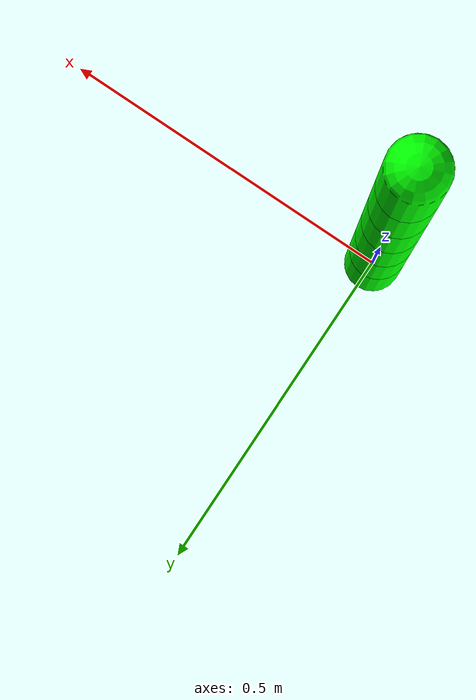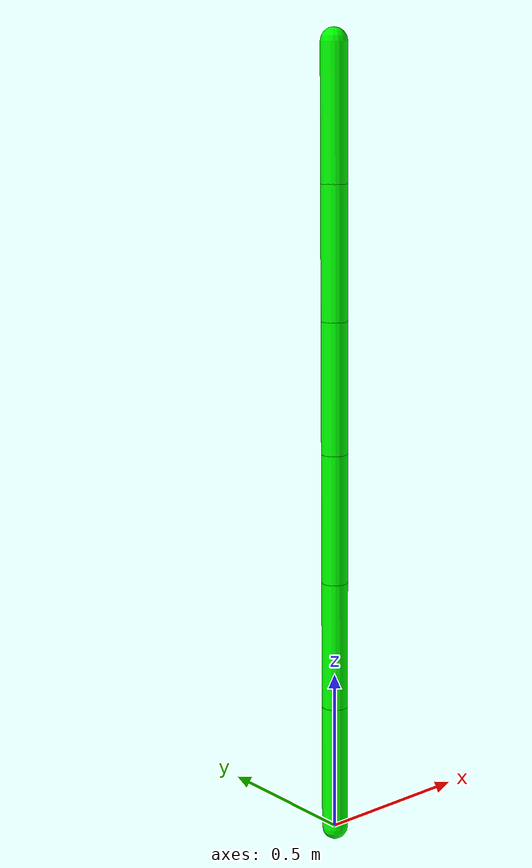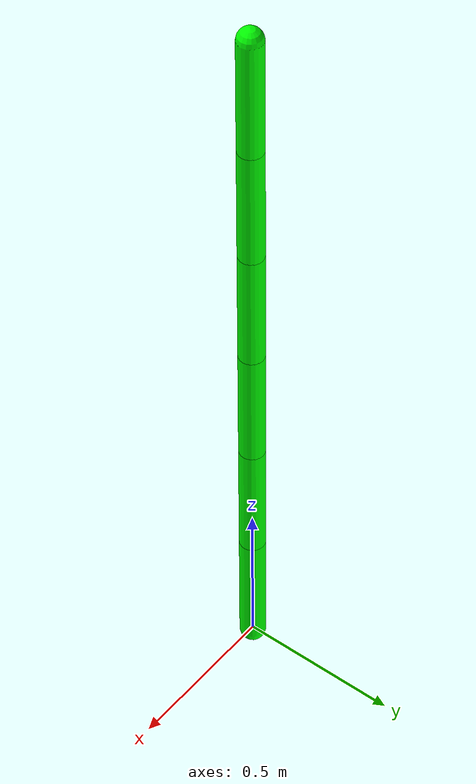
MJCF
<mujoco>
    <compiler angle="radian" meshdir="assets" autolimits="true"/>
    <option integrator="implicitfast" iterations="100"/>
    <default>
        <default class="simple">
            <joint damping="1"/>
            <general gaintype="fixed" biastype="affine"/>
        </default>
    </default>
    <worldbody>
        <body childclass="simple" name="base" pos="0 0 0">
            <body name="link1" pos="0 0 0">
                <joint name="joint1" type="hinge" axis="0 0 1" range="-3.14159 3.14159"/>
                <geom type="capsule" size="0.04 0.2" pos="0 0 0.2" rgba="0 1 0 1" contype="0" conaffinity="0" density="1"/>
                <body name="link2" pos="0 0 0.4">
                    <site name="site1" pos="0 0 0"/>
                    <joint name="joint2" type="hinge" axis="1 0 0" range="-3.14159 3.14159"/>
                    <geom type="capsule" size="0.04 0.2" pos="0 0 0.2" rgba="0 1 0 1" contype="0" conaffinity="0" density="1"/>
                    <body name="link3" pos="0 0 0.4">
                        <site name="site2" pos="0 0 0"/>
                        <joint name="joint3" type="hinge" axis="0 0 1" range="-3.14159 3.14159"/>
                        <geom type="capsule" size="0.04 0.2" pos="0 0 0.2" rgba="0 1 0 1" contype="0" conaffinity="0" density="1"/>
                        <body name="link4" pos="0 0 0.4">
                            <site name="site3" pos="0 0 0"/>
                            <joint name="joint4" type="hinge" axis="1 0 0" range="-3.14159 3.14159"/>
                            <geom type="capsule" size="0.04 0.2" pos="0 0 0.2" rgba="0 1 0 1" contype="0" conaffinity="0" density="1"/>
                            <body name="link5" pos="0 0 0.4">
                                <site name="site4" pos="0 0 0"/>
                                <joint name="joint5" type="hinge" axis="1 0 0" range="-3.14159 3.14159"/>
                                <geom type="capsule" size="0.04 0.2" pos="0 0 0.2" rgba="0 1 0 1" contype="0" conaffinity="0" density="1"/>
                                <body name="link6" pos="0 0 0.4">
									<joint name="joint6" type="hinge" axis="0 0 1" range="-3.14159 3.14159"/>
									<geom type="capsule" size="0.04 0.2" pos="0 0 0.2" rgba="0 1 0 1" contype="0" conaffinity="0" density="1"/>
                                    <site name="site5" pos="0 0 0"/>
									<body name="link7" pos="0 0 0.4">
										<site name="site6" pos="0 0 0"/>
									</body>
                                </body>
                            </body>
                        </body>
                    </body>
                </body>
            </body>
        </body>
    </worldbody>
    <actuator>
        <position joint="joint1" ctrllimited="true" ctrlrange="-3.14159 3.14159"/>
        <position joint="joint2" ctrllimited="true" ctrlrange="-3.14159 3.14159"/>
        <position joint="joint3" ctrllimited="true" ctrlrange="-3.14159 3.14159"/>
        <position joint="joint4" ctrllimited="true" ctrlrange="-3.14159 3.14159"/>
        <position joint="joint5" ctrllimited="true" ctrlrange="-3.14159 3.14159"/>
        <position joint="joint6" ctrllimited="true" ctrlrange="-3.14159 3.14159"/>
    </actuator>
</mujoco>
